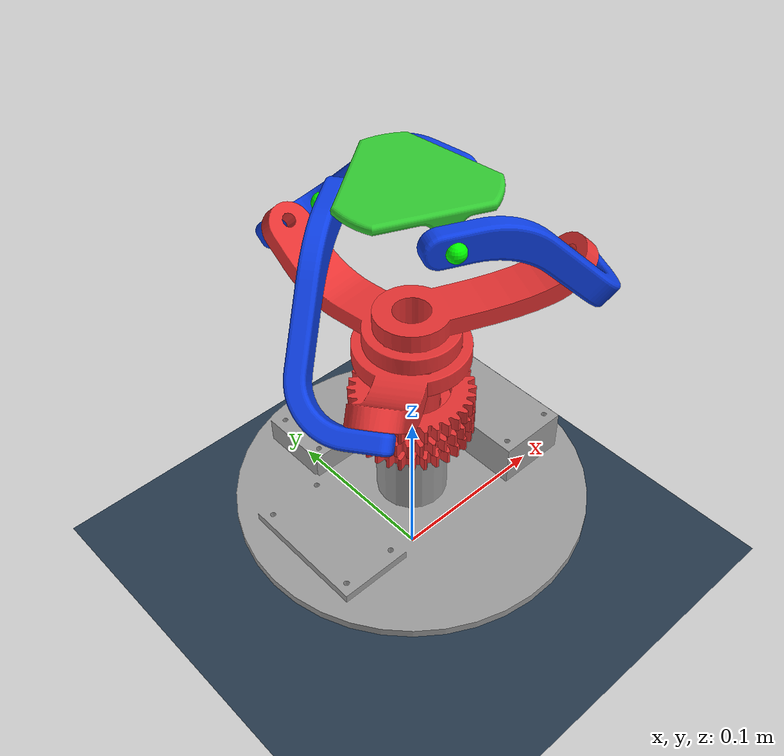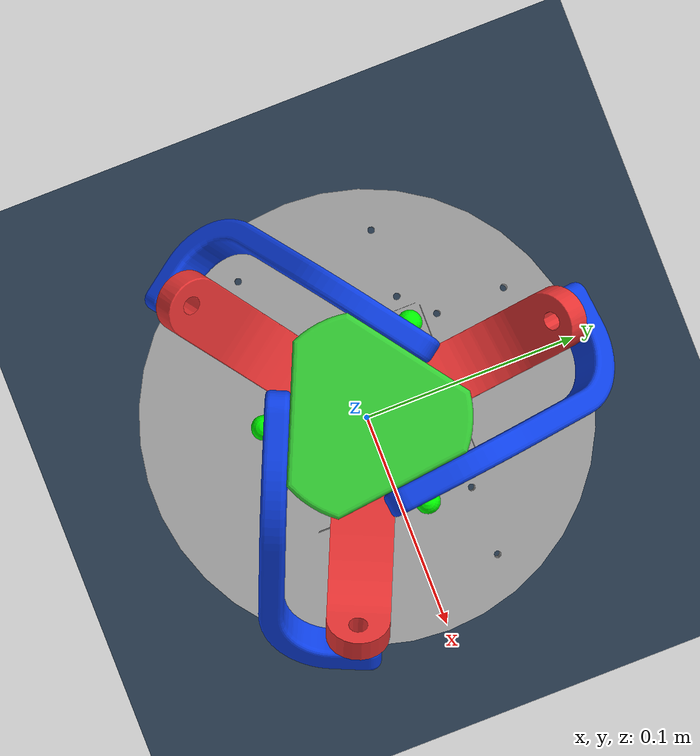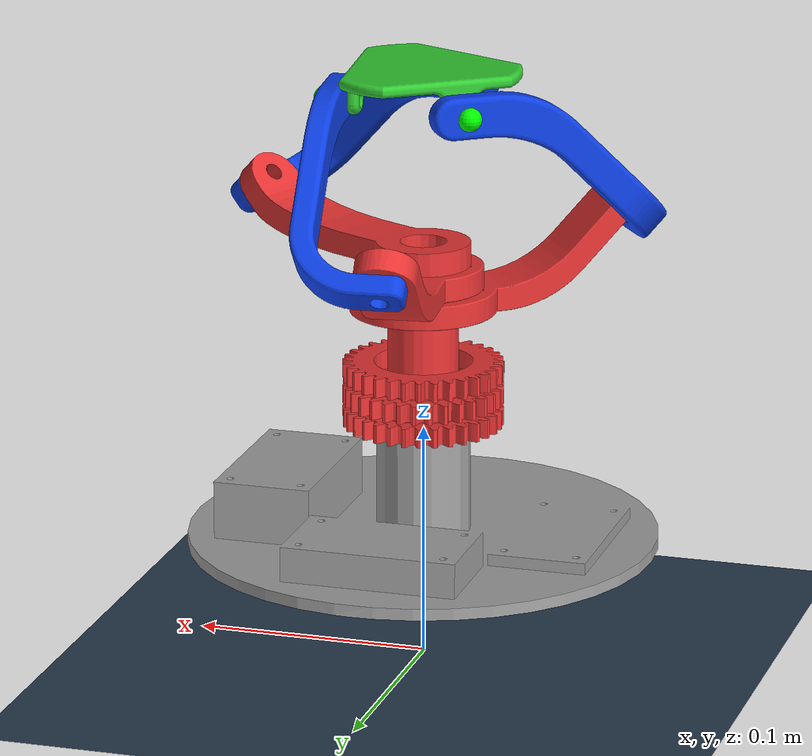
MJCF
<?xml version="1.0" encoding="UTF-8"?>

<mujoco model="3RRR_SPM">

  <compiler angle="radian"
            meshdir="../IMU-one-connection-urdf/meshes"
            strippath="true"/>

  <option timestep="0.002"
          gravity="0 0 0"
          integrator="implicitfast"/>

  <visual>
    <headlight ambient="0.4 0.4 0.4"
              diffuse="0.8 0.8 0.8"
              specular="0.2 0.2 0.2"/>
  </visual>

  <!-- MESHES & MATERIALS                                      -->

  <asset>
    <texture type="2d" name="groundplane" builtin="checker" mark="edge"
             rgb1="0.2 0.3 0.4" rgb2="0.1 0.15 0.2" markrgb="0.8 0.8 0.8"
             width="300" height="300"/>
    <material name="groundplane" texture="groundplane" texuniform="true"
              texrepeat="5 5" reflectance="0.2"/>

    <material name="base_mat"   rgba="0.62 0.62 0.62 1"/>
    <material name="gear_mat"   rgba="0.9  0.2  0.2  1"/>
    <material name="blue_mat"   rgba="0.05 0.25 0.9  1"/>
    <material name="plate_mat"  rgba="0.2  0.8  0.2  1"/>

    <mesh name="base_link"                file="base_link.STL"/>
    <mesh name="level-1-gear"             file="level-1-gear.STL"/>
    <mesh name="level-1-blue-link-bottom" file="level-1-blue-link-bottom.STL"/>
    <mesh name="top-plate-link-hand-1"    file="top-plate-link-hand-1.STL"/>
    <mesh name="level-2-gear"             file="level-2-gear.STL"/>
    <mesh name="level-2-blue-link-bottom" file="level-2-blue-link-bottom.STL"/>
    <mesh name="level-3-gear"             file="level-3-gear.STL"/>
    <mesh name="level-3-blue-link-bottom" file="level-3-blue-link-bottom.STL"/>
  </asset>

  <!-- WORLD                                                   -->

  <worldbody>

    <light name="top_light" pos="0 0 1" dir="0 0 -1" directional="true"/>
    <geom name="floor" type="plane" size="0.5 0.5 0.01" material="groundplane"/>

    <!-- BASE LINK (fixed to world)                          -->

    <body name="base_link" pos="0 0 0.05">

      <geom type="mesh" mesh="base_link" material="base_mat"/>

      <!-- BRANCH 1: gear → blue link                       -->
      <!-- Joint origin at (0, 0, 0) relative to base       -->

      <body name="level-1-gear" pos="0 0 0">

        <inertial pos="0.013587 -0.0056429 0.094341"
                  mass="0.080761"
                  fullinertia="4.6616e-05 6.3656e-05 4.7367e-05
                               9.2204e-06 -3.4092e-06 1.493e-06"/>

        <joint name="q1" type="hinge" axis="0 0 -1" damping="0.1"/>

        <geom type="mesh" mesh="level-1-gear" material="gear_mat"/>

        <!-- Blue link 1: offset from gear by (0.082963, -0.036024, 0.14008) -->
        <body name="level-1-blue-link-bottom" pos="0.082963 -0.036024 0.14008">

          <inertial pos="-0.043902 -0.01287 0.028036"
                    mass="0.02334"
                    fullinertia="1.4695e-05 3.5763e-05 2.6462e-05
                                 4.1327e-06 1.5846e-05 -2.5484e-06"/>

          <joint name="blue1_rev" type="hinge" axis="-0.64772 0.28365 0.70711" damping="0.05"/>

          <geom type="mesh" mesh="level-1-blue-link-bottom" material="blue_mat"/>

          <!-- Top attachment site: where top-plate-link-hand-1 connects -->
          <!-- Offset from blue link: (-0.093634, -0.0026632, 0.053033) -->
          <site name="blue_1_top"
                pos="-0.093634 -0.0026632 0.053033"
                size="0.005" rgba="0 1 0 1"/>

        </body>
      </body>

      <!-- BRANCH 2: gear → blue link                       -->
      <!-- Joint origin at (0, 0, 0) relative to base       -->

      <body name="level-2-gear" pos="0 0 0">

        <inertial pos="-0.0027259 0.0248 0.10006"
                  mass="0.05027"
                  fullinertia="4.2669e-05 1.3216e-05 5.0056e-05
                               3.3189e-06 7.8807e-07 -7.081e-06"/>

        <joint name="q2" type="hinge" axis="0 0 -1" damping="0.1"/>

        <geom type="mesh" mesh="level-2-gear" material="gear_mat"/>

        <!-- Blue link 2: offset from gear by (-0.010018, 0.090321, 0.14008) -->
        <body name="level-2-blue-link-bottom" pos="-0.010018 0.090321 0.14008">

          <inertial pos="0.033097 -0.031585 0.028036"
                    mass="0.02334"
                    fullinertia="3.4075e-05 1.6383e-05 2.6462e-05
                                 7.0566e-06 -5.7159e-06 1.4997e-05"/>

          <joint name="blue2_rev" type="hinge" axis="0.078213 -0.70277 0.70711" damping="0.05"/>

          <geom type="mesh" mesh="level-2-blue-link-bottom" material="blue_mat"/>

          <!-- Top attachment site (estimated from URDF symmetry) -->
          <site name="blue_2_top"
                pos="0.049123 -0.079758 0.053033"
                size="0.005" rgba="0 1 0 1"/>

        </body>
      </body>

      <!-- BRANCH 3: gear → blue link                       -->
      <!-- Joint origin at (0, 0, 0) relative to base       -->

      <body name="level-3-gear" pos="0 0 0">

        <inertial pos="-0.021472 -0.015495 0.10403"
                  mass="0.047184"
                  fullinertia="2.9339e-05 3.9833e-05 5.7783e-05
                               -1.6846e-05 9.6986e-06 7.1375e-06"/>

        <joint name="q3" type="hinge" axis="0 0 -1" damping="0.1"/>

        <geom type="mesh" mesh="level-3-gear" material="gear_mat"/>

        <!-- Blue link 3: offset from gear by (-0.072945, -0.053375, 0.14008) -->
        <body name="level-3-blue-link-bottom" pos="-0.072945 -0.053375 0.14008">

          <inertial pos="0.010805 0.044455 0.028036"
                    mass="0.02334"
                    fullinertia="2.6917e-05 2.3541e-05 2.6462e-05
                                 -1.1189e-05 -1.013e-05 -1.2449e-05"/>

          <joint name="blue3_rev" type="hinge" axis="0.56951 0.41912 0.70711" damping="0.05"/>

          <geom type="mesh" mesh="level-3-blue-link-bottom" material="blue_mat"/>

          <!-- Top attachment site (estimated from URDF symmetry) -->
          <site name="blue_3_top"
                pos="0.044511 0.082421 0.053033"
                size="0.005" rgba="0 1 0 1"/>

        </body>
      </body>

    </body>

    <!-- COMMON TOP PLATE (free-floating, top-level body)    -->

    <!-- Zero-angle pose: plate_joint_1 coincides with blue_1_top. -->
    <body name="top_plate" pos="-0.010671 -0.0386872 0.243113">

      <freejoint name="top_plate_free"/>

      <inertial pos="0.010671 0.038994 0.010481"
                mass="0.021991"
                fullinertia="7.722e-06 7.722e-06 1.499e-05
                             6.6298e-13 4.3689e-12 7.4372e-12"/>

      <geom type="mesh" mesh="top-plate-link-hand-1" material="plate_mat"/>

      <!-- Connection sites on the top plate -->
      <site name="plate_joint_1" pos="0 0 0"
            size="0.0048" rgba="1 1 0 1"/>

      <site name="plate_joint_2" pos="0.049776 0.049250 0"
            size="0.0048" rgba="1 1 0 1"/>

      <site name="plate_joint_3" pos="-0.017763 0.067733 0"
            size="0.0048" rgba="1 1 0 1"/>

    </body>

  </worldbody>

  <contact>
    <exclude body1="base_link" body2="level-1-gear"/>
    <exclude body1="base_link" body2="level-2-gear"/>
    <exclude body1="base_link" body2="level-3-gear"/>
    <exclude body1="level-1-gear" body2="level-2-gear"/>
    <exclude body1="level-1-gear" body2="level-3-gear"/>
    <exclude body1="level-2-gear" body2="level-3-gear"/>
    <exclude body1="level-1-blue-link-bottom" body2="top_plate"/>
    <exclude body1="level-2-blue-link-bottom" body2="top_plate"/>
    <exclude body1="level-3-blue-link-bottom" body2="top_plate"/>
  </contact>

  <!-- CLOSED-LOOP EQUALITY CONSTRAINTS                        -->

  <equality>
    <connect name="close_loop_1" site1="blue_1_top" site2="plate_joint_1"
             solref="0.002 1" solimp="0.99 0.999 0.001"/>
    <connect name="close_loop_2" site1="blue_2_top" site2="plate_joint_2"
             solref="0.002 1" solimp="0.99 0.999 0.001"/>
    <connect name="close_loop_3" site1="blue_3_top" site2="plate_joint_3"
             solref="0.002 1" solimp="0.99 0.999 0.001"/>
  </equality>

  <!-- ACTUATORS (position servos on the 3 input gears)        -->

  <actuator>
    <position name="motor_1" joint="q1" kp="10"/>
    <position name="motor_2" joint="q2" kp="10"/>
    <position name="motor_3" joint="q3" kp="10"/>
  </actuator>

</mujoco>
